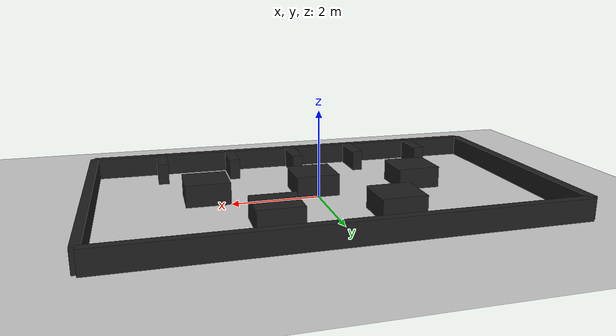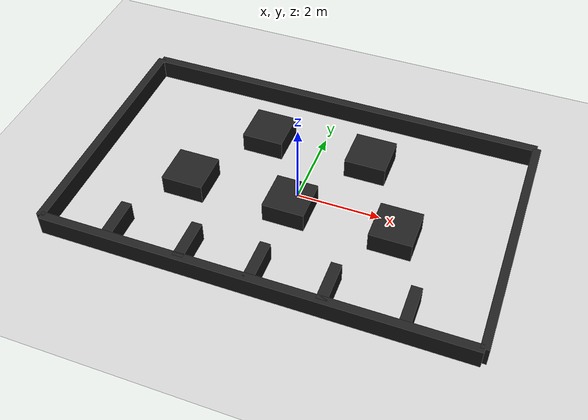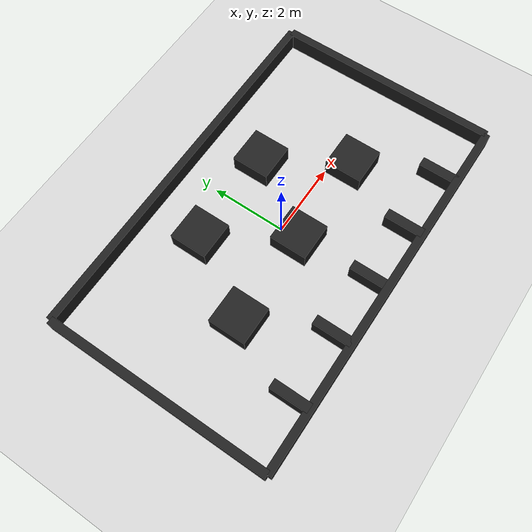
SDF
<sdf version='1.4'>
  <world name='default'>
    <!-- A global light source -->
    <include>
      <uri>model://sun</uri>
    </include>

    <!-- A ground plane -->
    <include>
      <uri>model://ground_plane</uri>
    </include>

    <physics type="ode">
      <real_time_update_rate>1000.0</real_time_update_rate>
      <max_step_size>0.001</max_step_size>
      <real_time_factor>1</real_time_factor>
      <ode>
        <solver>
          <type>quick</type>
          <iters>150</iters>
          <precon_iters>0</precon_iters>
          <sor>1.400000</sor>
          <use_dynamic_moi_rescaling>1</use_dynamic_moi_rescaling>
        </solver>
        <constraints>
          <cfm>0.00001</cfm>
          <erp>0.2</erp>
          <contact_max_correcting_vel>2000.000000</contact_max_correcting_vel>
          <contact_surface_layer>0.01000</contact_surface_layer>
        </constraints>
      </ode>
    </physics>

    <include>
      <uri>model://warehouse_env</uri>
    </include>

    <scene>
      <ambient>0.4 0.4 0.4 1</ambient>
      <background>0.7 0.7 0.7 1</background>
      <shadows>true</shadows>
    </scene>

    <gui fullscreen='0'>
      <camera name='user_camera'>
        <pose>0.0 0.0 17.0 0 1.5708 1.5708</pose>
        <view_controller>orbit</view_controller>
      </camera>
    </gui>
  </world>
</sdf>

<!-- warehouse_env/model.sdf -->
<sdf version='1.5'>
  <model name='warehouse_env'>
    <static>1</static>
    <link name='Wall_EAST'>
      <collision name='Wall_EAST_Collision'>
        <pose>5 0 0.25 0 0 0</pose>
        <geometry>
          <box>
            <size>0.2 6 0.5</size>
          </box>
        </geometry>
        <surface>
          <friction>
            <ode>
              <mu>1</mu>
              <mu2>1</mu2>
              <fdir1>0 0 0</fdir1>
              <slip1>0</slip1>
              <slip2>0</slip2>
            </ode>
            <torsional>
              <coefficient>1</coefficient>
              <patch_radius>0</patch_radius>
              <surface_radius>0</surface_radius>
              <use_patch_radius>1</use_patch_radius>
              <ode>
                <slip>0</slip>
              </ode>
            </torsional>
          </friction>
          <bounce>
            <restitution_coefficient>0</restitution_coefficient>
            <threshold>1e+06</threshold>
          </bounce>
          <contact>
            <collide_without_contact>0</collide_without_contact>
            <collide_without_contact_bitmask>1</collide_without_contact_bitmask>
            <collide_bitmask>1</collide_bitmask>
            <ode>
              <soft_cfm>0</soft_cfm>
              <soft_erp>0.2</soft_erp>
              <kp>1e+13</kp>
              <kd>1</kd>
              <max_vel>0.01</max_vel>
              <min_depth>0</min_depth>
            </ode>
            <bullet>
              <split_impulse>1</split_impulse>
              <split_impulse_penetration_threshold>-0.01</split_impulse_penetration_threshold>
              <soft_cfm>0</soft_cfm>
              <soft_erp>0.2</soft_erp>
              <kp>1e+13</kp>
              <kd>1</kd>
            </bullet>
          </contact>
        </surface>
      </collision>

      <visual name='Wall_EAST_Visual'>
        <pose>5 0 0.25 0 0 0</pose>
        <geometry>
          <box>
            <size>0.2 6 0.5</size>
          </box>
        </geometry>
        <material>
          <script>
            <name>Gazebo/Black</name>
          </script>
        </material>
      </visual>
    </link>

    <link name='Wall_WEST'>
      <collision name='Wall_WEST_Collision'>
        <pose>-5 0 0.25 0 0 0</pose>
        <geometry>
          <box>
            <size>0.2 6 0.5</size>
          </box>
        </geometry>
        <surface>
          <friction>
            <ode>
              <mu>1</mu>
              <mu2>1</mu2>
              <fdir1>0 0 0</fdir1>
              <slip1>0</slip1>
              <slip2>0</slip2>
            </ode>
            <torsional>
              <coefficient>1</coefficient>
              <patch_radius>0</patch_radius>
              <surface_radius>0</surface_radius>
              <use_patch_radius>1</use_patch_radius>
              <ode>
                <slip>0</slip>
              </ode>
            </torsional>
          </friction>
          <bounce>
            <restitution_coefficient>0</restitution_coefficient>
            <threshold>1e+06</threshold>
          </bounce>
          <contact>
            <collide_without_contact>0</collide_without_contact>
            <collide_without_contact_bitmask>1</collide_without_contact_bitmask>
            <collide_bitmask>1</collide_bitmask>
            <ode>
              <soft_cfm>0</soft_cfm>
              <soft_erp>0.2</soft_erp>
              <kp>1e+13</kp>
              <kd>1</kd>
              <max_vel>0.01</max_vel>
              <min_depth>0</min_depth>
            </ode>
            <bullet>
              <split_impulse>1</split_impulse>
              <split_impulse_penetration_threshold>-0.01</split_impulse_penetration_threshold>
              <soft_cfm>0</soft_cfm>
              <soft_erp>0.2</soft_erp>
              <kp>1e+13</kp>
              <kd>1</kd>
            </bullet>
          </contact>
        </surface>
      </collision>

      <visual name='Wall_SOUTH_Visual'>
        <pose>-5 0 0.25 0 0 0</pose>
        <geometry>
          <box>
            <size>0.2 6 0.5</size>
          </box>
        </geometry>
        <material>
          <script>
            <name>Gazebo/Black</name>
          </script>
        </material>
      </visual>
    </link>

    <link name='Wall_SOUTH'>
      <collision name='Wall_SOUTH_Collision'>
        <pose>0 -3 0.25 0 0 0</pose>
        <geometry>
          <box>
            <size>10 0.2 0.5</size>
          </box>
        </geometry>
        <surface>
          <friction>
            <ode>
              <mu>1</mu>
              <mu2>1</mu2>
              <fdir1>0 0 0</fdir1>
              <slip1>0</slip1>
              <slip2>0</slip2>
            </ode>
            <torsional>
              <coefficient>1</coefficient>
              <patch_radius>0</patch_radius>
              <surface_radius>0</surface_radius>
              <use_patch_radius>1</use_patch_radius>
              <ode>
                <slip>0</slip>
              </ode>
            </torsional>
          </friction>
          <bounce>
            <restitution_coefficient>0</restitution_coefficient>
            <threshold>1e+06</threshold>
          </bounce>
          <contact>
            <collide_without_contact>0</collide_without_contact>
            <collide_without_contact_bitmask>1</collide_without_contact_bitmask>
            <collide_bitmask>1</collide_bitmask>
            <ode>
              <soft_cfm>0</soft_cfm>
              <soft_erp>0.2</soft_erp>
              <kp>1e+13</kp>
              <kd>1</kd>
              <max_vel>0.01</max_vel>
              <min_depth>0</min_depth>
            </ode>
            <bullet>
              <split_impulse>1</split_impulse>
              <split_impulse_penetration_threshold>-0.01</split_impulse_penetration_threshold>
              <soft_cfm>0</soft_cfm>
              <soft_erp>0.2</soft_erp>
              <kp>1e+13</kp>
              <kd>1</kd>
            </bullet>
          </contact>
        </surface>
      </collision>

      <visual name='Wall_SOUTH_Visual'>
        <pose>0 -3 0.25 0 0 0</pose>
        <geometry>
          <box>
            <size>10 0.2 0.5</size>
          </box>
        </geometry>
        <material>
          <script>
            <name>Gazebo/Black</name>
          </script>
        </material>
      </visual>
    </link>

    <link name='Wall_NORTH'>
      <collision name='Wall_NORTH_Collision'>
        <pose>0 3 0.25 0 0 0</pose>
        <geometry>
          <box>
            <size>10 0.2 0.5</size>
          </box>
        </geometry>
        <surface>
          <friction>
            <ode>
              <mu>1</mu>
              <mu2>1</mu2>
              <fdir1>0 0 0</fdir1>
              <slip1>0</slip1>
              <slip2>0</slip2>
            </ode>
            <torsional>
              <coefficient>1</coefficient>
              <patch_radius>0</patch_radius>
              <surface_radius>0</surface_radius>
              <use_patch_radius>1</use_patch_radius>
              <ode>
                <slip>0</slip>
              </ode>
            </torsional>
          </friction>
          <bounce>
            <restitution_coefficient>0</restitution_coefficient>
            <threshold>1e+06</threshold>
          </bounce>
          <contact>
            <collide_without_contact>0</collide_without_contact>
            <collide_without_contact_bitmask>1</collide_without_contact_bitmask>
            <collide_bitmask>1</collide_bitmask>
            <ode>
              <soft_cfm>0</soft_cfm>
              <soft_erp>0.2</soft_erp>
              <kp>1e+13</kp>
              <kd>1</kd>
              <max_vel>0.01</max_vel>
              <min_depth>0</min_depth>
            </ode>
            <bullet>
              <split_impulse>1</split_impulse>
              <split_impulse_penetration_threshold>-0.01</split_impulse_penetration_threshold>
              <soft_cfm>0</soft_cfm>
              <soft_erp>0.2</soft_erp>
              <kp>1e+13</kp>
              <kd>1</kd>
            </bullet>
          </contact>
        </surface>
      </collision>

      <visual name='Wall_NORTH_Visual'>
        <pose>0 3 0.25 0 0 0</pose>
        <geometry>
          <box>
            <size>10 0.2 0.5</size>
          </box>
        </geometry>
        <material>
          <script>
            <name>Gazebo/Black</name>
          </script>
        </material>
      </visual>
    </link>

    <link name='Wall_Goal1'>
      <collision name='Wall_Goal1_Collision'>
        <pose>-3.375 -2.5 0.25 0 0 0</pose>
        <geometry>
          <box>
            <size>0.25 1 0.5</size>
          </box>
        </geometry>
        <surface>
          <friction>
            <ode>
              <mu>1</mu>
              <mu2>1</mu2>
              <fdir1>0 0 0</fdir1>
              <slip1>0</slip1>
              <slip2>0</slip2>
            </ode>
            <torsional>
              <coefficient>1</coefficient>
              <patch_radius>0</patch_radius>
              <surface_radius>0</surface_radius>
              <use_patch_radius>1</use_patch_radius>
              <ode>
                <slip>0</slip>
              </ode>
            </torsional>
          </friction>
          <bounce>
            <restitution_coefficient>0</restitution_coefficient>
            <threshold>1e+06</threshold>
          </bounce>
          <contact>
            <collide_without_contact>0</collide_without_contact>
            <collide_without_contact_bitmask>1</collide_without_contact_bitmask>
            <collide_bitmask>1</collide_bitmask>
            <ode>
              <soft_cfm>0</soft_cfm>
              <soft_erp>0.2</soft_erp>
              <kp>1e+13</kp>
              <kd>1</kd>
              <max_vel>0.01</max_vel>
              <min_depth>0</min_depth>
            </ode>
            <bullet>
              <split_impulse>1</split_impulse>
              <split_impulse_penetration_threshold>-0.01</split_impulse_penetration_threshold>
              <soft_cfm>0</soft_cfm>
              <soft_erp>0.2</soft_erp>
              <kp>1e+13</kp>
              <kd>1</kd>
            </bullet>
          </contact>
        </surface>
      </collision>

      <visual name='Wall_Goal1_Visual'>
        <pose>-3.375 -2.5 0.25 0 0 0</pose>
        <geometry>
          <box>
            <size>0.25 1 0.5</size>
          </box>
        </geometry>
        <material>
          <script>
            <name>Gazebo/Black</name>
          </script>
        </material>
      </visual>
    </link>

    <link name='Wall_Goal2'>
      <collision name='Wall_Goal2_Collision'>
        <pose>-1.625 -2.5 0.25 0 0 0</pose>
        <geometry>
          <box>
            <size>0.25 1 0.5</size>
          </box>
        </geometry>
        <surface>
          <friction>
            <ode>
              <mu>1</mu>
              <mu2>1</mu2>
              <fdir1>0 0 0</fdir1>
              <slip1>0</slip1>
              <slip2>0</slip2>
            </ode>
            <torsional>
              <coefficient>1</coefficient>
              <patch_radius>0</patch_radius>
              <surface_radius>0</surface_radius>
              <use_patch_radius>1</use_patch_radius>
              <ode>
                <slip>0</slip>
              </ode>
            </torsional>
          </friction>
          <bounce>
            <restitution_coefficient>0</restitution_coefficient>
            <threshold>1e+06</threshold>
          </bounce>
          <contact>
            <collide_without_contact>0</collide_without_contact>
            <collide_without_contact_bitmask>1</collide_without_contact_bitmask>
            <collide_bitmask>1</collide_bitmask>
            <ode>
              <soft_cfm>0</soft_cfm>
              <soft_erp>0.2</soft_erp>
              <kp>1e+13</kp>
              <kd>1</kd>
              <max_vel>0.01</max_vel>
              <min_depth>0</min_depth>
            </ode>
            <bullet>
              <split_impulse>1</split_impulse>
              <split_impulse_penetration_threshold>-0.01</split_impulse_penetration_threshold>
              <soft_cfm>0</soft_cfm>
              <soft_erp>0.2</soft_erp>
              <kp>1e+13</kp>
              <kd>1</kd>
            </bullet>
          </contact>
        </surface>
      </collision>

      <visual name='Wall_Goal2_Visual'>
        <pose>-1.625 -2.5 0.25 0 0 0</pose>
        <geometry>
          <box>
            <size>0.25 1 0.5</size>
          </box>
        </geometry>
        <material>
          <script>
            <name>Gazebo/Black</name>
          </script>
        </material>
      </visual>
    </link>

    <link name='Wall_Goal3'>
      <collision name='Wall_Goal3_Collision'>
        <pose>0 -2.5 0.25 0 0 0</pose>
        <geometry>
          <box>
            <size>0.25 1 0.5</size>
          </box>
        </geometry>
        <surface>
          <friction>
            <ode>
              <mu>1</mu>
              <mu2>1</mu2>
              <fdir1>0 0 0</fdir1>
              <slip1>0</slip1>
              <slip2>0</slip2>
            </ode>
            <torsional>
              <coefficient>1</coefficient>
              <patch_radius>0</patch_radius>
              <surface_radius>0</surface_radius>
              <use_patch_radius>1</use_patch_radius>
              <ode>
                <slip>0</slip>
              </ode>
            </torsional>
          </friction>
          <bounce>
            <restitution_coefficient>0</restitution_coefficient>
            <threshold>1e+06</threshold>
          </bounce>
          <contact>
            <collide_without_contact>0</collide_without_contact>
            <collide_without_contact_bitmask>1</collide_without_contact_bitmask>
            <collide_bitmask>1</collide_bitmask>
            <ode>
              <soft_cfm>0</soft_cfm>
              <soft_erp>0.2</soft_erp>
              <kp>1e+13</kp>
              <kd>1</kd>
              <max_vel>0.01</max_vel>
              <min_depth>0</min_depth>
            </ode>
            <bullet>
              <split_impulse>1</split_impulse>
              <split_impulse_penetration_threshold>-0.01</split_impulse_penetration_threshold>
              <soft_cfm>0</soft_cfm>
              <soft_erp>0.2</soft_erp>
              <kp>1e+13</kp>
              <kd>1</kd>
            </bullet>
          </contact>
        </surface>
      </collision>

      <visual name='Wall_Goal3_Visual'>
        <pose>0 -2.5 0.25 0 0 0</pose>
        <geometry>
          <box>
            <size>0.25 1 0.5</size>
          </box>
        </geometry>
        <material>
          <script>
            <name>Gazebo/Black</name>
          </script>
        </material>
      </visual>
    </link>

    <link name='Wall_Goal4'>
      <collision name='Wall_Goal4_Collision'>
        <pose>1.625 -2.5 0.25 0 0 0</pose>
        <geometry>
          <box>
            <size>0.25 1 0.5</size>
          </box>
        </geometry>
        <surface>
          <friction>
            <ode>
              <mu>1</mu>
              <mu2>1</mu2>
              <fdir1>0 0 0</fdir1>
              <slip1>0</slip1>
              <slip2>0</slip2>
            </ode>
            <torsional>
              <coefficient>1</coefficient>
              <patch_radius>0</patch_radius>
              <surface_radius>0</surface_radius>
              <use_patch_radius>1</use_patch_radius>
              <ode>
                <slip>0</slip>
              </ode>
            </torsional>
          </friction>
          <bounce>
            <restitution_coefficient>0</restitution_coefficient>
            <threshold>1e+06</threshold>
          </bounce>
          <contact>
            <collide_without_contact>0</collide_without_contact>
            <collide_without_contact_bitmask>1</collide_without_contact_bitmask>
            <collide_bitmask>1</collide_bitmask>
            <ode>
              <soft_cfm>0</soft_cfm>
              <soft_erp>0.2</soft_erp>
              <kp>1e+13</kp>
              <kd>1</kd>
              <max_vel>0.01</max_vel>
              <min_depth>0</min_depth>
            </ode>
            <bullet>
              <split_impulse>1</split_impulse>
              <split_impulse_penetration_threshold>-0.01</split_impulse_penetration_threshold>
              <soft_cfm>0</soft_cfm>
              <soft_erp>0.2</soft_erp>
              <kp>1e+13</kp>
              <kd>1</kd>
            </bullet>
          </contact>
        </surface>
      </collision>

      <visual name='Wall_Goal4_Visual'>
        <pose>1.625 -2.5 0.25 0 0 0</pose>
        <geometry>
          <box>
            <size>0.25 1 0.5</size>
          </box>
        </geometry>
        <material>
          <script>
            <name>Gazebo/Black</name>
          </script>
        </material>
      </visual>
    </link>

    <link name='Wall_Goal5'>
      <collision name='Wall_Goal5_Collision'>
        <pose>3.375 -2.5 0.25 0 0 0</pose>
        <geometry>
          <box>
            <size>0.25 1 0.5</size>
          </box>
        </geometry>
        <surface>
          <friction>
            <ode>
              <mu>1</mu>
              <mu2>1</mu2>
              <fdir1>0 0 0</fdir1>
              <slip1>0</slip1>
              <slip2>0</slip2>
            </ode>
            <torsional>
              <coefficient>1</coefficient>
              <patch_radius>0</patch_radius>
              <surface_radius>0</surface_radius>
              <use_patch_radius>1</use_patch_radius>
              <ode>
                <slip>0</slip>
              </ode>
            </torsional>
          </friction>
          <bounce>
            <restitution_coefficient>0</restitution_coefficient>
            <threshold>1e+06</threshold>
          </bounce>
          <contact>
            <collide_without_contact>0</collide_without_contact>
            <collide_without_contact_bitmask>1</collide_without_contact_bitmask>
            <collide_bitmask>1</collide_bitmask>
            <ode>
              <soft_cfm>0</soft_cfm>
              <soft_erp>0.2</soft_erp>
              <kp>1e+13</kp>
              <kd>1</kd>
              <max_vel>0.01</max_vel>
              <min_depth>0</min_depth>
            </ode>
            <bullet>
              <split_impulse>1</split_impulse>
              <split_impulse_penetration_threshold>-0.01</split_impulse_penetration_threshold>
              <soft_cfm>0</soft_cfm>
              <soft_erp>0.2</soft_erp>
              <kp>1e+13</kp>
              <kd>1</kd>
            </bullet>
          </contact>
        </surface>
      </collision>

      <visual name='Wall_Goal5_Visual'>
        <pose>3.375 -2.5 0.25 0 0 0</pose>
        <geometry>
          <box>
            <size>0.25 1 0.5</size>
          </box>
        </geometry>
        <material>
          <script>
            <name>Gazebo/Black</name>
          </script>
        </material>
      </visual>
    </link>

    <link name='Box1'>
      <collision name='Box1_Collision'>
        <pose>-2.5 -0.5 0.25 0 0 0</pose>
        <geometry>
          <box>
            <size>1 1 0.5</size>
          </box>
        </geometry>
        <surface>
          <friction>
            <ode>
              <mu>1</mu>
              <mu2>1</mu2>
              <fdir1>0 0 0</fdir1>
              <slip1>0</slip1>
              <slip2>0</slip2>
            </ode>
            <torsional>
              <coefficient>1</coefficient>
              <patch_radius>0</patch_radius>
              <surface_radius>0</surface_radius>
              <use_patch_radius>1</use_patch_radius>
              <ode>
                <slip>0</slip>
              </ode>
            </torsional>
          </friction>
          <bounce>
            <restitution_coefficient>0</restitution_coefficient>
            <threshold>1e+06</threshold>
          </bounce>
          <contact>
            <collide_without_contact>0</collide_without_contact>
            <collide_without_contact_bitmask>1</collide_without_contact_bitmask>
            <collide_bitmask>1</collide_bitmask>
            <ode>
              <soft_cfm>0</soft_cfm>
              <soft_erp>0.2</soft_erp>
              <kp>1e+13</kp>
              <kd>1</kd>
              <max_vel>0.01</max_vel>
              <min_depth>0</min_depth>
            </ode>
            <bullet>
              <split_impulse>1</split_impulse>
              <split_impulse_penetration_threshold>-0.01</split_impulse_penetration_threshold>
              <soft_cfm>0</soft_cfm>
              <soft_erp>0.2</soft_erp>
              <kp>1e+13</kp>
              <kd>1</kd>
            </bullet>
          </contact>
        </surface>
      </collision>

      <visual name='Box1_Visual'>
        <pose>-2.5 -0.5 0.25 0 0 0</pose>
        <geometry>
          <box>
            <size>1 1 0.5</size>
          </box>
        </geometry>
        <material>
          <script>
            <name>Gazebo/Black</name>
          </script>
        </material>
      </visual>
    </link>

    <link name='Box2'>
      <collision name='Box2_Collision'>
        <pose>0 -0.5 0.25 0 0 0</pose>
        <geometry>
          <box>
            <size>1 1 0.5</size>
          </box>
        </geometry>
        <surface>
          <friction>
            <ode>
              <mu>1</mu>
              <mu2>1</mu2>
              <fdir1>0 0 0</fdir1>
              <slip1>0</slip1>
              <slip2>0</slip2>
            </ode>
            <torsional>
              <coefficient>1</coefficient>
              <patch_radius>0</patch_radius>
              <surface_radius>0</surface_radius>
              <use_patch_radius>1</use_patch_radius>
              <ode>
                <slip>0</slip>
              </ode>
            </torsional>
          </friction>
          <bounce>
            <restitution_coefficient>0</restitution_coefficient>
            <threshold>1e+06</threshold>
          </bounce>
          <contact>
            <collide_without_contact>0</collide_without_contact>
            <collide_without_contact_bitmask>1</collide_without_contact_bitmask>
            <collide_bitmask>1</collide_bitmask>
            <ode>
              <soft_cfm>0</soft_cfm>
              <soft_erp>0.2</soft_erp>
              <kp>1e+13</kp>
              <kd>1</kd>
              <max_vel>0.01</max_vel>
              <min_depth>0</min_depth>
            </ode>
            <bullet>
              <split_impulse>1</split_impulse>
              <split_impulse_penetration_threshold>-0.01</split_impulse_penetration_threshold>
              <soft_cfm>0</soft_cfm>
              <soft_erp>0.2</soft_erp>
              <kp>1e+13</kp>
              <kd>1</kd>
            </bullet>
          </contact>
        </surface>
      </collision>

      <visual name='Box2_Visual'>
        <pose>0 -0.5 0.25 0 0 0</pose>
        <geometry>
          <box>
            <size>1 1 0.5</size>
          </box>
        </geometry>
        <material>
          <script>
            <name>Gazebo/Black</name>
          </script>
        </material>
      </visual>
    </link>

    <link name='Box3'>
      <collision name='Box3_Collision'>
        <pose>2.5 -0.5 0.25 0 0 0</pose>
        <geometry>
          <box>
            <size>1 1 0.5</size>
          </box>
        </geometry>
        <surface>
          <friction>
            <ode>
              <mu>1</mu>
              <mu2>1</mu2>
              <fdir1>0 0 0</fdir1>
              <slip1>0</slip1>
              <slip2>0</slip2>
            </ode>
            <torsional>
              <coefficient>1</coefficient>
              <patch_radius>0</patch_radius>
              <surface_radius>0</surface_radius>
              <use_patch_radius>1</use_patch_radius>
              <ode>
                <slip>0</slip>
              </ode>
            </torsional>
          </friction>
          <bounce>
            <restitution_coefficient>0</restitution_coefficient>
            <threshold>1e+06</threshold>
          </bounce>
          <contact>
            <collide_without_contact>0</collide_without_contact>
            <collide_without_contact_bitmask>1</collide_without_contact_bitmask>
            <collide_bitmask>1</collide_bitmask>
            <ode>
              <soft_cfm>0</soft_cfm>
              <soft_erp>0.2</soft_erp>
              <kp>1e+13</kp>
              <kd>1</kd>
              <max_vel>0.01</max_vel>
              <min_depth>0</min_depth>
            </ode>
            <bullet>
              <split_impulse>1</split_impulse>
              <split_impulse_penetration_threshold>-0.01</split_impulse_penetration_threshold>
              <soft_cfm>0</soft_cfm>
              <soft_erp>0.2</soft_erp>
              <kp>1e+13</kp>
              <kd>1</kd>
            </bullet>
          </contact>
        </surface>
      </collision>

      <visual name='Box3_Visual'>
        <pose>2.5 -0.5 0.25 0 0 0</pose>
        <geometry>
          <box>
            <size>1 1 0.5</size>
          </box>
        </geometry>
        <material>
          <script>
            <name>Gazebo/Black</name>
          </script>
        </material>
      </visual>
    </link>

    <link name='Box4'>
      <collision name='Box4_Collision'>
        <pose>-1.3 1.5 0.25 0 0 0</pose>
        <geometry>
          <box>
            <size>1 1 0.5</size>
          </box>
        </geometry>
        <surface>
          <friction>
            <ode>
              <mu>1</mu>
              <mu2>1</mu2>
              <fdir1>0 0 0</fdir1>
              <slip1>0</slip1>
              <slip2>0</slip2>
            </ode>
            <torsional>
              <coefficient>1</coefficient>
              <patch_radius>0</patch_radius>
              <surface_radius>0</surface_radius>
              <use_patch_radius>1</use_patch_radius>
              <ode>
                <slip>0</slip>
              </ode>
            </torsional>
          </friction>
          <bounce>
            <restitution_coefficient>0</restitution_coefficient>
            <threshold>1e+06</threshold>
          </bounce>
          <contact>
            <collide_without_contact>0</collide_without_contact>
            <collide_without_contact_bitmask>1</collide_without_contact_bitmask>
            <collide_bitmask>1</collide_bitmask>
            <ode>
              <soft_cfm>0</soft_cfm>
              <soft_erp>0.2</soft_erp>
              <kp>1e+13</kp>
              <kd>1</kd>
              <max_vel>0.01</max_vel>
              <min_depth>0</min_depth>
            </ode>
            <bullet>
              <split_impulse>1</split_impulse>
              <split_impulse_penetration_threshold>-0.01</split_impulse_penetration_threshold>
              <soft_cfm>0</soft_cfm>
              <soft_erp>0.2</soft_erp>
              <kp>1e+13</kp>
              <kd>1</kd>
            </bullet>
          </contact>
        </surface>
      </collision>

      <visual name='Box4_Visual'>
        <pose>-1.3 1.5 0.25 0 0 0</pose>
        <geometry>
          <box>
            <size>1 1 0.5</size>
          </box>
        </geometry>
        <material>
          <script>
            <name>Gazebo/Black</name>
          </script>
        </material>
      </visual>
    </link>

    <link name='Box5'>
      <collision name='Box5_Collision'>
        <pose>1.3 1.5 0.25 0 0 0</pose>
        <geometry>
          <box>
            <size>1 1 0.5</size>
          </box>
        </geometry>
        <surface>
          <friction>
            <ode>
              <mu>1</mu>
              <mu2>1</mu2>
              <fdir1>0 0 0</fdir1>
              <slip1>0</slip1>
              <slip2>0</slip2>
            </ode>
            <torsional>
              <coefficient>1</coefficient>
              <patch_radius>0</patch_radius>
              <surface_radius>0</surface_radius>
              <use_patch_radius>1</use_patch_radius>
              <ode>
                <slip>0</slip>
              </ode>
            </torsional>
          </friction>
          <bounce>
            <restitution_coefficient>0</restitution_coefficient>
            <threshold>1e+06</threshold>
          </bounce>
          <contact>
            <collide_without_contact>0</collide_without_contact>
            <collide_without_contact_bitmask>1</collide_without_contact_bitmask>
            <collide_bitmask>1</collide_bitmask>
            <ode>
              <soft_cfm>0</soft_cfm>
              <soft_erp>0.2</soft_erp>
              <kp>1e+13</kp>
              <kd>1</kd>
              <max_vel>0.01</max_vel>
              <min_depth>0</min_depth>
            </ode>
            <bullet>
              <split_impulse>1</split_impulse>
              <split_impulse_penetration_threshold>-0.01</split_impulse_penetration_threshold>
              <soft_cfm>0</soft_cfm>
              <soft_erp>0.2</soft_erp>
              <kp>1e+13</kp>
              <kd>1</kd>
            </bullet>
          </contact>
        </surface>
      </collision>

      <visual name='Box5_Visual'>
        <pose>1.3 1.5 0.25 0 0 0</pose>
        <geometry>
          <box>
            <size>1 1 0.5</size>
          </box>
        </geometry>
        <material>
          <script>
            <name>Gazebo/Black</name>
          </script>
        </material>
      </visual>
    </link>

  </model>
</sdf>
